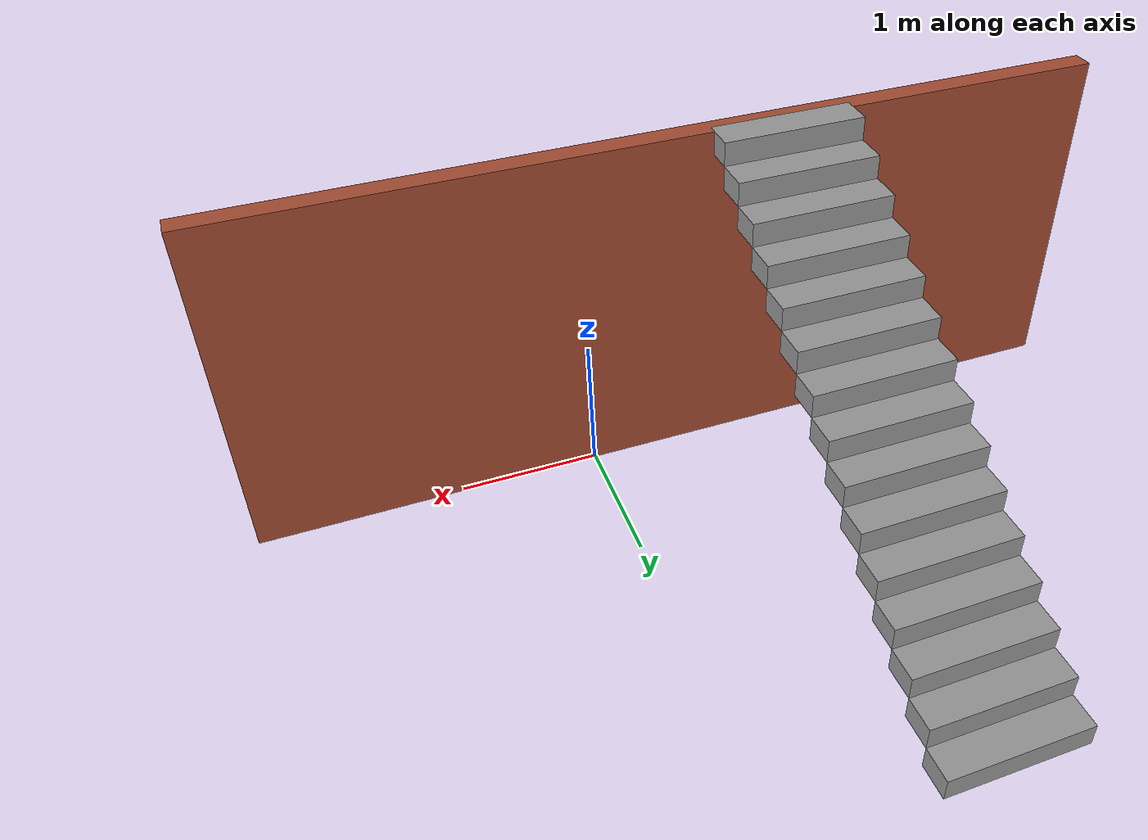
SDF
<?xml version='1.0'?>
<sdf version='1.7'>
  <model name='stairs'>
    <pose>-0.679178 1.6506 0 0 -0 0</pose>
    <link name='Stairs_1'>
      <visual name='Stairs_1_Visual_0'>
        <pose>-0.736939 1.6748 0.083333 0 -0 0</pose>
        <geometry>
          <box>
            <size>1 0.233333 0.166667</size>
          </box>
        </geometry>
        <material>
          <script>
            <uri>file://media/materials/scripts/gazebo.material</uri>
            <name>Gazebo/Grey</name>
          </script>
          <ambient>1 1 1 1</ambient>
        </material>
        <meta>
          <layer>0</layer>
        </meta>
      </visual>
      <collision name='Stairs_1_Collision_0'>
        <geometry>
          <box>
            <size>1 0.233333 0.166667</size>
          </box>
        </geometry>
        <pose>-0.736939 1.6748 0.083333 0 -0 0</pose>
      </collision>
      <visual name='Stairs_1_Visual_1'>
        <pose>-0.736939 1.44146 0.25 0 -0 0</pose>
        <geometry>
          <box>
            <size>1 0.233333 0.166667</size>
          </box>
        </geometry>
        <material>
          <script>
            <uri>file://media/materials/scripts/gazebo.material</uri>
            <name>Gazebo/Grey</name>
          </script>
          <ambient>1 1 1 1</ambient>
        </material>
        <meta>
          <layer>0</layer>
        </meta>
      </visual>
      <collision name='Stairs_1_Collision_1'>
        <geometry>
          <box>
            <size>1 0.233333 0.166667</size>
          </box>
        </geometry>
        <pose>-0.736939 1.44146 0.25 0 -0 0</pose>
      </collision>
      <visual name='Stairs_1_Visual_2'>
        <pose>-0.736939 1.20813 0.416667 0 -0 0</pose>
        <geometry>
          <box>
            <size>1 0.233333 0.166667</size>
          </box>
        </geometry>
        <material>
          <script>
            <uri>file://media/materials/scripts/gazebo.material</uri>
            <name>Gazebo/Grey</name>
          </script>
          <ambient>1 1 1 1</ambient>
        </material>
        <meta>
          <layer>0</layer>
        </meta>
      </visual>
      <collision name='Stairs_1_Collision_2'>
        <geometry>
          <box>
            <size>1 0.233333 0.166667</size>
          </box>
        </geometry>
        <pose>-0.736939 1.20813 0.416667 0 -0 0</pose>
      </collision>
      <visual name='Stairs_1_Visual_3'>
        <pose>-0.736939 0.974796 0.583333 0 -0 0</pose>
        <geometry>
          <box>
            <size>1 0.233333 0.166667</size>
          </box>
        </geometry>
        <material>
          <script>
            <uri>file://media/materials/scripts/gazebo.material</uri>
            <name>Gazebo/Grey</name>
          </script>
          <ambient>1 1 1 1</ambient>
        </material>
        <meta>
          <layer>0</layer>
        </meta>
      </visual>
      <collision name='Stairs_1_Collision_3'>
        <geometry>
          <box>
            <size>1 0.233333 0.166667</size>
          </box>
        </geometry>
        <pose>-0.736939 0.974796 0.583333 0 -0 0</pose>
      </collision>
      <visual name='Stairs_1_Visual_4'>
        <pose>-0.736939 0.741463 0.75 0 -0 0</pose>
        <geometry>
          <box>
            <size>1 0.233333 0.166667</size>
          </box>
        </geometry>
        <material>
          <script>
            <uri>file://media/materials/scripts/gazebo.material</uri>
            <name>Gazebo/Grey</name>
          </script>
          <ambient>1 1 1 1</ambient>
        </material>
        <meta>
          <layer>0</layer>
        </meta>
      </visual>
      <collision name='Stairs_1_Collision_4'>
        <geometry>
          <box>
            <size>1 0.233333 0.166667</size>
          </box>
        </geometry>
        <pose>-0.736939 0.741463 0.75 0 -0 0</pose>
      </collision>
      <visual name='Stairs_1_Visual_5'>
        <pose>-0.736939 0.50813 0.916667 0 -0 0</pose>
        <geometry>
          <box>
            <size>1 0.233333 0.166667</size>
          </box>
        </geometry>
        <material>
          <script>
            <uri>file://media/materials/scripts/gazebo.material</uri>
            <name>Gazebo/Grey</name>
          </script>
          <ambient>1 1 1 1</ambient>
        </material>
        <meta>
          <layer>0</layer>
        </meta>
      </visual>
      <collision name='Stairs_1_Collision_5'>
        <geometry>
          <box>
            <size>1 0.233333 0.166667</size>
          </box>
        </geometry>
        <pose>-0.736939 0.50813 0.916667 0 -0 0</pose>
      </collision>
      <visual name='Stairs_1_Visual_6'>
        <pose>-0.736939 0.274797 1.08333 0 -0 0</pose>
        <geometry>
          <box>
            <size>1 0.233333 0.166667</size>
          </box>
        </geometry>
        <material>
          <script>
            <uri>file://media/materials/scripts/gazebo.material</uri>
            <name>Gazebo/Grey</name>
          </script>
          <ambient>1 1 1 1</ambient>
        </material>
        <meta>
          <layer>0</layer>
        </meta>
      </visual>
      <collision name='Stairs_1_Collision_6'>
        <geometry>
          <box>
            <size>1 0.233333 0.166667</size>
          </box>
        </geometry>
        <pose>-0.736939 0.274797 1.08333 0 -0 0</pose>
      </collision>
      <visual name='Stairs_1_Visual_7'>
        <pose>-0.736939 0.041463 1.25 0 -0 0</pose>
        <geometry>
          <box>
            <size>1 0.233333 0.166667</size>
          </box>
        </geometry>
        <material>
          <script>
            <uri>file://media/materials/scripts/gazebo.material</uri>
            <name>Gazebo/Grey</name>
          </script>
          <ambient>1 1 1 1</ambient>
        </material>
        <meta>
          <layer>0</layer>
        </meta>
      </visual>
      <collision name='Stairs_1_Collision_7'>
        <geometry>
          <box>
            <size>1 0.233333 0.166667</size>
          </box>
        </geometry>
        <pose>-0.736939 0.041463 1.25 0 -0 0</pose>
      </collision>
      <visual name='Stairs_1_Visual_8'>
        <pose>-0.736939 -0.19187 1.41667 0 -0 0</pose>
        <geometry>
          <box>
            <size>1 0.233333 0.166667</size>
          </box>
        </geometry>
        <material>
          <script>
            <uri>file://media/materials/scripts/gazebo.material</uri>
            <name>Gazebo/Grey</name>
          </script>
          <ambient>1 1 1 1</ambient>
        </material>
        <meta>
          <layer>0</layer>
        </meta>
      </visual>
      <collision name='Stairs_1_Collision_8'>
        <geometry>
          <box>
            <size>1 0.233333 0.166667</size>
          </box>
        </geometry>
        <pose>-0.736939 -0.19187 1.41667 0 -0 0</pose>
      </collision>
      <visual name='Stairs_1_Visual_9'>
        <pose>-0.736939 -0.425204 1.58333 0 -0 0</pose>
        <geometry>
          <box>
            <size>1 0.233333 0.166667</size>
          </box>
        </geometry>
        <material>
          <script>
            <uri>file://media/materials/scripts/gazebo.material</uri>
            <name>Gazebo/Grey</name>
          </script>
          <ambient>1 1 1 1</ambient>
        </material>
        <meta>
          <layer>0</layer>
        </meta>
      </visual>
      <collision name='Stairs_1_Collision_9'>
        <geometry>
          <box>
            <size>1 0.233333 0.166667</size>
          </box>
        </geometry>
        <pose>-0.736939 -0.425204 1.58333 0 -0 0</pose>
      </collision>
      <visual name='Stairs_1_Visual_10'>
        <pose>-0.736939 -0.658537 1.75 0 -0 0</pose>
        <geometry>
          <box>
            <size>1 0.233333 0.166667</size>
          </box>
        </geometry>
        <material>
          <script>
            <uri>file://media/materials/scripts/gazebo.material</uri>
            <name>Gazebo/Grey</name>
          </script>
          <ambient>1 1 1 1</ambient>
        </material>
        <meta>
          <layer>0</layer>
        </meta>
      </visual>
      <collision name='Stairs_1_Collision_10'>
        <geometry>
          <box>
            <size>1 0.233333 0.166667</size>
          </box>
        </geometry>
        <pose>-0.736939 -0.658537 1.75 0 -0 0</pose>
      </collision>
      <visual name='Stairs_1_Visual_11'>
        <pose>-0.736939 -0.89187 1.91667 0 -0 0</pose>
        <geometry>
          <box>
            <size>1 0.233333 0.166667</size>
          </box>
        </geometry>
        <material>
          <script>
            <uri>file://media/materials/scripts/gazebo.material</uri>
            <name>Gazebo/Grey</name>
          </script>
          <ambient>1 1 1 1</ambient>
        </material>
        <meta>
          <layer>0</layer>
        </meta>
      </visual>
      <collision name='Stairs_1_Collision_11'>
        <geometry>
          <box>
            <size>1 0.233333 0.166667</size>
          </box>
        </geometry>
        <pose>-0.736939 -0.89187 1.91667 0 -0 0</pose>
      </collision>
      <visual name='Stairs_1_Visual_12'>
        <pose>-0.736939 -1.1252 2.08333 0 -0 0</pose>
        <geometry>
          <box>
            <size>1 0.233333 0.166667</size>
          </box>
        </geometry>
        <material>
          <script>
            <uri>file://media/materials/scripts/gazebo.material</uri>
            <name>Gazebo/Grey</name>
          </script>
          <ambient>1 1 1 1</ambient>
        </material>
        <meta>
          <layer>0</layer>
        </meta>
      </visual>
      <collision name='Stairs_1_Collision_12'>
        <geometry>
          <box>
            <size>1 0.233333 0.166667</size>
          </box>
        </geometry>
        <pose>-0.736939 -1.1252 2.08333 0 -0 0</pose>
      </collision>
      <visual name='Stairs_1_Visual_13'>
        <pose>-0.736939 -1.35854 2.25 0 -0 0</pose>
        <geometry>
          <box>
            <size>1 0.233333 0.166667</size>
          </box>
        </geometry>
        <material>
          <script>
            <uri>file://media/materials/scripts/gazebo.material</uri>
            <name>Gazebo/Grey</name>
          </script>
          <ambient>1 1 1 1</ambient>
        </material>
        <meta>
          <layer>0</layer>
        </meta>
      </visual>
      <collision name='Stairs_1_Collision_13'>
        <geometry>
          <box>
            <size>1 0.233333 0.166667</size>
          </box>
        </geometry>
        <pose>-0.736939 -1.35854 2.25 0 -0 0</pose>
      </collision>
      <visual name='Stairs_1_Visual_14'>
        <pose>-0.736939 -1.59187 2.41667 0 -0 0</pose>
        <geometry>
          <box>
            <size>1 0.233333 0.166667</size>
          </box>
        </geometry>
        <material>
          <script>
            <uri>file://media/materials/scripts/gazebo.material</uri>
            <name>Gazebo/Grey</name>
          </script>
          <ambient>1 1 1 1</ambient>
        </material>
        <meta>
          <layer>0</layer>
        </meta>
      </visual>
      <collision name='Stairs_1_Collision_14'>
        <geometry>
          <box>
            <size>1 0.233333 0.166667</size>
          </box>
        </geometry>
        <pose>-0.736939 -1.59187 2.41667 0 -0 0</pose>
      </collision>
    </link>
    <link name='Wall_7'>
      <collision name='Wall_7_Collision'>
        <geometry>
          <box>
            <size>6.25 0.15 2.5</size>
          </box>
        </geometry>
        <pose>0 0 1.25 0 -0 0</pose>
      </collision>
      <visual name='Wall_7_Visual'>
        <pose>0 0 1.25 0 -0 0</pose>
        <geometry>
          <box>
            <size>6.25 0.15 2.5</size>
          </box>
        </geometry>
        <material>
          <script>
            <uri>file://media/materials/scripts/gazebo.material</uri>
            <name>Gazebo/Bricks</name>
          </script>
          <ambient>1 1 1 1</ambient>
        </material>
        <meta>
          <layer>0</layer>
        </meta>
      </visual>
      <pose>0 -1.71646 0 0 -0 0</pose>
    </link>
    <static>1</static>
  </model>
</sdf>
